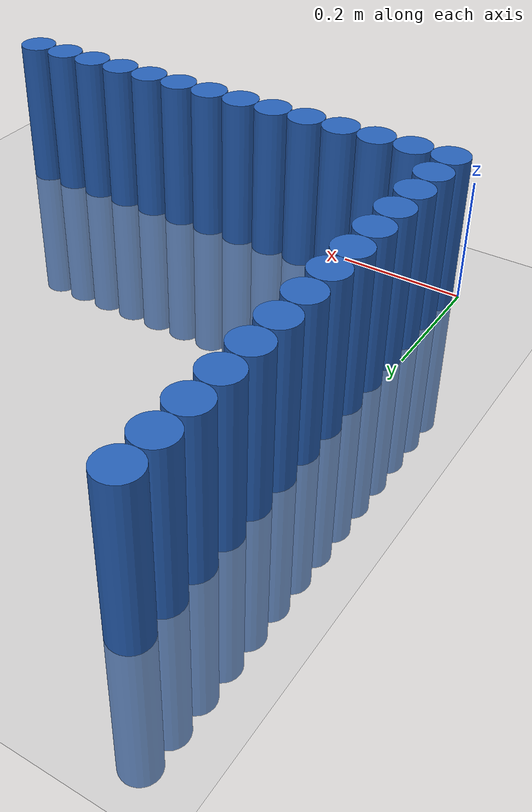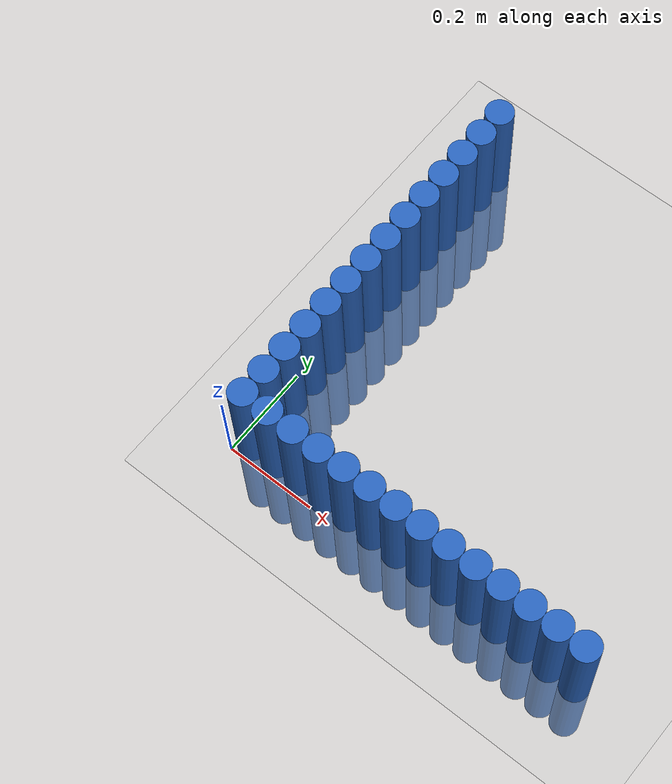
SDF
<sdf version="1.6">
 <world name="default">
  <model name="ground_plane">
   <static>1</static>
   <link name="link">
    <collision name="collision">
     <geometry><plane><normal>0 0 1</normal><size>100 100</size></plane></geometry>
     <surface><friction><ode><mu>100</mu><mu2>50</mu2></ode></friction></surface>
    </collision>
    <visual name="visual">
     <cast_shadows>0</cast_shadows>
     <geometry><plane><normal>0 0 1</normal><size>100 100</size></plane></geometry>
     <material>
      <script><uri>file://media/materials/scripts/gazebo.material</uri><name>Gazebo/Grey</name></script>
     </material>
    </visual>
   </link>
  </model>
  <model name="unit_cylinder_0">
   <static>1</static>
   <pose>0.030000 0.030000 0.000000 0.000000 0.000000 0.000000</pose>
   <link name="link">
    <inertial>
     <mass>1</mass>
     <inertia><ixx>0.145833</ixx><ixy>0</ixy><ixz>0</ixz><iyy>0.145833</iyy><iyz>0</iyz><izz>0.125</izz></inertia>
    </inertial>
    <collision name="collision">
     <geometry><cylinder><radius>0.030000</radius><length>0.5</length></cylinder></geometry>
    </collision>
    <visual name="visual">
     <geometry><cylinder><radius>0.030000</radius><length>0.5</length></cylinder></geometry>
     <material>
      <ambient>0.152000 0.379000 0.720000 1</ambient>
      <diffuse>0.152000 0.379000 0.720000 1</diffuse>
     </material>
     <material>
      <script><name>Gazebo/Grey</name><uri>file://media/materials/scripts/gazebo.material</uri></script>
     </material>
    </visual>
   </link>
  </model>
  <model name="unit_cylinder_1">
   <static>1</static>
   <pose>0.030000 0.090000 0.000000 0.000000 0.000000 0.000000</pose>
   <link name="link">
    <inertial>
     <mass>1</mass>
     <inertia><ixx>0.145833</ixx><ixy>0</ixy><ixz>0</ixz><iyy>0.145833</iyy><iyz>0</iyz><izz>0.125</izz></inertia>
    </inertial>
    <collision name="collision">
     <geometry><cylinder><radius>0.030000</radius><length>0.5</length></cylinder></geometry>
    </collision>
    <visual name="visual">
     <geometry><cylinder><radius>0.030000</radius><length>0.5</length></cylinder></geometry>
     <material>
      <ambient>0.152000 0.379000 0.720000 1</ambient>
      <diffuse>0.152000 0.379000 0.720000 1</diffuse>
     </material>
     <material>
      <script><name>Gazebo/Grey</name><uri>file://media/materials/scripts/gazebo.material</uri></script>
     </material>
    </visual>
   </link>
  </model>
  <model name="unit_cylinder_2">
   <static>1</static>
   <pose>0.030000 0.150000 0.000000 0.000000 0.000000 0.000000</pose>
   <link name="link">
    <inertial>
     <mass>1</mass>
     <inertia><ixx>0.145833</ixx><ixy>0</ixy><ixz>0</ixz><iyy>0.145833</iyy><iyz>0</iyz><izz>0.125</izz></inertia>
    </inertial>
    <collision name="collision">
     <geometry><cylinder><radius>0.030000</radius><length>0.5</length></cylinder></geometry>
    </collision>
    <visual name="visual">
     <geometry><cylinder><radius>0.030000</radius><length>0.5</length></cylinder></geometry>
     <material>
      <ambient>0.152000 0.379000 0.720000 1</ambient>
      <diffuse>0.152000 0.379000 0.720000 1</diffuse>
     </material>
     <material>
      <script><name>Gazebo/Grey</name><uri>file://media/materials/scripts/gazebo.material</uri></script>
     </material>
    </visual>
   </link>
  </model>
  <model name="unit_cylinder_3">
   <static>1</static>
   <pose>0.030000 0.210000 0.000000 0.000000 0.000000 0.000000</pose>
   <link name="link">
    <inertial>
     <mass>1</mass>
     <inertia><ixx>0.145833</ixx><ixy>0</ixy><ixz>0</ixz><iyy>0.145833</iyy><iyz>0</iyz><izz>0.125</izz></inertia>
    </inertial>
    <collision name="collision">
     <geometry><cylinder><radius>0.030000</radius><length>0.5</length></cylinder></geometry>
    </collision>
    <visual name="visual">
     <geometry><cylinder><radius>0.030000</radius><length>0.5</length></cylinder></geometry>
     <material>
      <ambient>0.152000 0.379000 0.720000 1</ambient>
      <diffuse>0.152000 0.379000 0.720000 1</diffuse>
     </material>
     <material>
      <script><name>Gazebo/Grey</name><uri>file://media/materials/scripts/gazebo.material</uri></script>
     </material>
    </visual>
   </link>
  </model>
  <model name="unit_cylinder_4">
   <static>1</static>
   <pose>0.030000 0.270000 0.000000 0.000000 0.000000 0.000000</pose>
   <link name="link">
    <inertial>
     <mass>1</mass>
     <inertia><ixx>0.145833</ixx><ixy>0</ixy><ixz>0</ixz><iyy>0.145833</iyy><iyz>0</iyz><izz>0.125</izz></inertia>
    </inertial>
    <collision name="collision">
     <geometry><cylinder><radius>0.030000</radius><length>0.5</length></cylinder></geometry>
    </collision>
    <visual name="visual">
     <geometry><cylinder><radius>0.030000</radius><length>0.5</length></cylinder></geometry>
     <material>
      <ambient>0.152000 0.379000 0.720000 1</ambient>
      <diffuse>0.152000 0.379000 0.720000 1</diffuse>
     </material>
     <material>
      <script><name>Gazebo/Grey</name><uri>file://media/materials/scripts/gazebo.material</uri></script>
     </material>
    </visual>
   </link>
  </model>
  <model name="unit_cylinder_5">
   <static>1</static>
   <pose>0.030000 0.330000 0.000000 0.000000 0.000000 0.000000</pose>
   <link name="link">
    <inertial>
     <mass>1</mass>
     <inertia><ixx>0.145833</ixx><ixy>0</ixy><ixz>0</ixz><iyy>0.145833</iyy><iyz>0</iyz><izz>0.125</izz></inertia>
    </inertial>
    <collision name="collision">
     <geometry><cylinder><radius>0.030000</radius><length>0.5</length></cylinder></geometry>
    </collision>
    <visual name="visual">
     <geometry><cylinder><radius>0.030000</radius><length>0.5</length></cylinder></geometry>
     <material>
      <ambient>0.152000 0.379000 0.720000 1</ambient>
      <diffuse>0.152000 0.379000 0.720000 1</diffuse>
     </material>
     <material>
      <script><name>Gazebo/Grey</name><uri>file://media/materials/scripts/gazebo.material</uri></script>
     </material>
    </visual>
   </link>
  </model>
  <model name="unit_cylinder_6">
   <static>1</static>
   <pose>0.030000 0.390000 0.000000 0.000000 0.000000 0.000000</pose>
   <link name="link">
    <inertial>
     <mass>1</mass>
     <inertia><ixx>0.145833</ixx><ixy>0</ixy><ixz>0</ixz><iyy>0.145833</iyy><iyz>0</iyz><izz>0.125</izz></inertia>
    </inertial>
    <collision name="collision">
     <geometry><cylinder><radius>0.030000</radius><length>0.5</length></cylinder></geometry>
    </collision>
    <visual name="visual">
     <geometry><cylinder><radius>0.030000</radius><length>0.5</length></cylinder></geometry>
     <material>
      <ambient>0.152000 0.379000 0.720000 1</ambient>
      <diffuse>0.152000 0.379000 0.720000 1</diffuse>
     </material>
     <material>
      <script><name>Gazebo/Grey</name><uri>file://media/materials/scripts/gazebo.material</uri></script>
     </material>
    </visual>
   </link>
  </model>
  <model name="unit_cylinder_7">
   <static>1</static>
   <pose>0.030000 0.450000 0.000000 0.000000 0.000000 0.000000</pose>
   <link name="link">
    <inertial>
     <mass>1</mass>
     <inertia><ixx>0.145833</ixx><ixy>0</ixy><ixz>0</ixz><iyy>0.145833</iyy><iyz>0</iyz><izz>0.125</izz></inertia>
    </inertial>
    <collision name="collision">
     <geometry><cylinder><radius>0.030000</radius><length>0.5</length></cylinder></geometry>
    </collision>
    <visual name="visual">
     <geometry><cylinder><radius>0.030000</radius><length>0.5</length></cylinder></geometry>
     <material>
      <ambient>0.152000 0.379000 0.720000 1</ambient>
      <diffuse>0.152000 0.379000 0.720000 1</diffuse>
     </material>
     <material>
      <script><name>Gazebo/Grey</name><uri>file://media/materials/scripts/gazebo.material</uri></script>
     </material>
    </visual>
   </link>
  </model>
  <model name="unit_cylinder_8">
   <static>1</static>
   <pose>0.030000 0.510000 0.000000 0.000000 0.000000 0.000000</pose>
   <link name="link">
    <inertial>
     <mass>1</mass>
     <inertia><ixx>0.145833</ixx><ixy>0</ixy><ixz>0</ixz><iyy>0.145833</iyy><iyz>0</iyz><izz>0.125</izz></inertia>
    </inertial>
    <collision name="collision">
     <geometry><cylinder><radius>0.030000</radius><length>0.5</length></cylinder></geometry>
    </collision>
    <visual name="visual">
     <geometry><cylinder><radius>0.030000</radius><length>0.5</length></cylinder></geometry>
     <material>
      <ambient>0.152000 0.379000 0.720000 1</ambient>
      <diffuse>0.152000 0.379000 0.720000 1</diffuse>
     </material>
     <material>
      <script><name>Gazebo/Grey</name><uri>file://media/materials/scripts/gazebo.material</uri></script>
     </material>
    </visual>
   </link>
  </model>
  <model name="unit_cylinder_9">
   <static>1</static>
   <pose>0.030000 0.570000 0.000000 0.000000 0.000000 0.000000</pose>
   <link name="link">
    <inertial>
     <mass>1</mass>
     <inertia><ixx>0.145833</ixx><ixy>0</ixy><ixz>0</ixz><iyy>0.145833</iyy><iyz>0</iyz><izz>0.125</izz></inertia>
    </inertial>
    <collision name="collision">
     <geometry><cylinder><radius>0.030000</radius><length>0.5</length></cylinder></geometry>
    </collision>
    <visual name="visual">
     <geometry><cylinder><radius>0.030000</radius><length>0.5</length></cylinder></geometry>
     <material>
      <ambient>0.152000 0.379000 0.720000 1</ambient>
      <diffuse>0.152000 0.379000 0.720000 1</diffuse>
     </material>
     <material>
      <script><name>Gazebo/Grey</name><uri>file://media/materials/scripts/gazebo.material</uri></script>
     </material>
    </visual>
   </link>
  </model>
  <model name="unit_cylinder_10">
   <static>1</static>
   <pose>0.030000 0.630000 0.000000 0.000000 0.000000 0.000000</pose>
   <link name="link">
    <inertial>
     <mass>1</mass>
     <inertia><ixx>0.145833</ixx><ixy>0</ixy><ixz>0</ixz><iyy>0.145833</iyy><iyz>0</iyz><izz>0.125</izz></inertia>
    </inertial>
    <collision name="collision">
     <geometry><cylinder><radius>0.030000</radius><length>0.5</length></cylinder></geometry>
    </collision>
    <visual name="visual">
     <geometry><cylinder><radius>0.030000</radius><length>0.5</length></cylinder></geometry>
     <material>
      <ambient>0.152000 0.379000 0.720000 1</ambient>
      <diffuse>0.152000 0.379000 0.720000 1</diffuse>
     </material>
     <material>
      <script><name>Gazebo/Grey</name><uri>file://media/materials/scripts/gazebo.material</uri></script>
     </material>
    </visual>
   </link>
  </model>
  <model name="unit_cylinder_11">
   <static>1</static>
   <pose>0.030000 0.690000 0.000000 0.000000 0.000000 0.000000</pose>
   <link name="link">
    <inertial>
     <mass>1</mass>
     <inertia><ixx>0.145833</ixx><ixy>0</ixy><ixz>0</ixz><iyy>0.145833</iyy><iyz>0</iyz><izz>0.125</izz></inertia>
    </inertial>
    <collision name="collision">
     <geometry><cylinder><radius>0.030000</radius><length>0.5</length></cylinder></geometry>
    </collision>
    <visual name="visual">
     <geometry><cylinder><radius>0.030000</radius><length>0.5</length></cylinder></geometry>
     <material>
      <ambient>0.152000 0.379000 0.720000 1</ambient>
      <diffuse>0.152000 0.379000 0.720000 1</diffuse>
     </material>
     <material>
      <script><name>Gazebo/Grey</name><uri>file://media/materials/scripts/gazebo.material</uri></script>
     </material>
    </visual>
   </link>
  </model>
  <model name="unit_cylinder_12">
   <static>1</static>
   <pose>0.030000 0.750000 0.000000 0.000000 0.000000 0.000000</pose>
   <link name="link">
    <inertial>
     <mass>1</mass>
     <inertia><ixx>0.145833</ixx><ixy>0</ixy><ixz>0</ixz><iyy>0.145833</iyy><iyz>0</iyz><izz>0.125</izz></inertia>
    </inertial>
    <collision name="collision">
     <geometry><cylinder><radius>0.030000</radius><length>0.5</length></cylinder></geometry>
    </collision>
    <visual name="visual">
     <geometry><cylinder><radius>0.030000</radius><length>0.5</length></cylinder></geometry>
     <material>
      <ambient>0.152000 0.379000 0.720000 1</ambient>
      <diffuse>0.152000 0.379000 0.720000 1</diffuse>
     </material>
     <material>
      <script><name>Gazebo/Grey</name><uri>file://media/materials/scripts/gazebo.material</uri></script>
     </material>
    </visual>
   </link>
  </model>
  <model name="unit_cylinder_13">
   <static>1</static>
   <pose>0.030000 0.810000 0.000000 0.000000 0.000000 0.000000</pose>
   <link name="link">
    <inertial>
     <mass>1</mass>
     <inertia><ixx>0.145833</ixx><ixy>0</ixy><ixz>0</ixz><iyy>0.145833</iyy><iyz>0</iyz><izz>0.125</izz></inertia>
    </inertial>
    <collision name="collision">
     <geometry><cylinder><radius>0.030000</radius><length>0.5</length></cylinder></geometry>
    </collision>
    <visual name="visual">
     <geometry><cylinder><radius>0.030000</radius><length>0.5</length></cylinder></geometry>
     <material>
      <ambient>0.152000 0.379000 0.720000 1</ambient>
      <diffuse>0.152000 0.379000 0.720000 1</diffuse>
     </material>
     <material>
      <script><name>Gazebo/Grey</name><uri>file://media/materials/scripts/gazebo.material</uri></script>
     </material>
    </visual>
   </link>
  </model>
  <model name="unit_cylinder_29">
   <static>1</static>
   <pose>0.090000 0.030000 0.000000 0.000000 0.000000 0.000000</pose>
   <link name="link">
    <inertial>
     <mass>1</mass>
     <inertia><ixx>0.145833</ixx><ixy>0</ixy><ixz>0</ixz><iyy>0.145833</iyy><iyz>0</iyz><izz>0.125</izz></inertia>
    </inertial>
    <collision name="collision">
     <geometry><cylinder><radius>0.030000</radius><length>0.5</length></cylinder></geometry>
    </collision>
    <visual name="visual">
     <geometry><cylinder><radius>0.030000</radius><length>0.5</length></cylinder></geometry>
     <material>
      <ambient>0.152000 0.379000 0.720000 1</ambient>
      <diffuse>0.152000 0.379000 0.720000 1</diffuse>
     </material>
     <material>
      <script><name>Gazebo/Grey</name><uri>file://media/materials/scripts/gazebo.material</uri></script>
     </material>
    </visual>
   </link>
  </model>
  <model name="unit_cylinder_31">
   <static>1</static>
   <pose>0.150000 0.030000 0.000000 0.000000 0.000000 0.000000</pose>
   <link name="link">
    <inertial>
     <mass>1</mass>
     <inertia><ixx>0.145833</ixx><ixy>0</ixy><ixz>0</ixz><iyy>0.145833</iyy><iyz>0</iyz><izz>0.125</izz></inertia>
    </inertial>
    <collision name="collision">
     <geometry><cylinder><radius>0.030000</radius><length>0.5</length></cylinder></geometry>
    </collision>
    <visual name="visual">
     <geometry><cylinder><radius>0.030000</radius><length>0.5</length></cylinder></geometry>
     <material>
      <ambient>0.152000 0.379000 0.720000 1</ambient>
      <diffuse>0.152000 0.379000 0.720000 1</diffuse>
     </material>
     <material>
      <script><name>Gazebo/Grey</name><uri>file://media/materials/scripts/gazebo.material</uri></script>
     </material>
    </visual>
   </link>
  </model>
  <model name="unit_cylinder_33">
   <static>1</static>
   <pose>0.210000 0.030000 0.000000 0.000000 0.000000 0.000000</pose>
   <link name="link">
    <inertial>
     <mass>1</mass>
     <inertia><ixx>0.145833</ixx><ixy>0</ixy><ixz>0</ixz><iyy>0.145833</iyy><iyz>0</iyz><izz>0.125</izz></inertia>
    </inertial>
    <collision name="collision">
     <geometry><cylinder><radius>0.030000</radius><length>0.5</length></cylinder></geometry>
    </collision>
    <visual name="visual">
     <geometry><cylinder><radius>0.030000</radius><length>0.5</length></cylinder></geometry>
     <material>
      <ambient>0.152000 0.379000 0.720000 1</ambient>
      <diffuse>0.152000 0.379000 0.720000 1</diffuse>
     </material>
     <material>
      <script><name>Gazebo/Grey</name><uri>file://media/materials/scripts/gazebo.material</uri></script>
     </material>
    </visual>
   </link>
  </model>
  <model name="unit_cylinder_35">
   <static>1</static>
   <pose>0.270000 0.030000 0.000000 0.000000 0.000000 0.000000</pose>
   <link name="link">
    <inertial>
     <mass>1</mass>
     <inertia><ixx>0.145833</ixx><ixy>0</ixy><ixz>0</ixz><iyy>0.145833</iyy><iyz>0</iyz><izz>0.125</izz></inertia>
    </inertial>
    <collision name="collision">
     <geometry><cylinder><radius>0.030000</radius><length>0.5</length></cylinder></geometry>
    </collision>
    <visual name="visual">
     <geometry><cylinder><radius>0.030000</radius><length>0.5</length></cylinder></geometry>
     <material>
      <ambient>0.152000 0.379000 0.720000 1</ambient>
      <diffuse>0.152000 0.379000 0.720000 1</diffuse>
     </material>
     <material>
      <script><name>Gazebo/Grey</name><uri>file://media/materials/scripts/gazebo.material</uri></script>
     </material>
    </visual>
   </link>
  </model>
  <model name="unit_cylinder_37">
   <static>1</static>
   <pose>0.330000 0.030000 0.000000 0.000000 0.000000 0.000000</pose>
   <link name="link">
    <inertial>
     <mass>1</mass>
     <inertia><ixx>0.145833</ixx><ixy>0</ixy><ixz>0</ixz><iyy>0.145833</iyy><iyz>0</iyz><izz>0.125</izz></inertia>
    </inertial>
    <collision name="collision">
     <geometry><cylinder><radius>0.030000</radius><length>0.5</length></cylinder></geometry>
    </collision>
    <visual name="visual">
     <geometry><cylinder><radius>0.030000</radius><length>0.5</length></cylinder></geometry>
     <material>
      <ambient>0.152000 0.379000 0.720000 1</ambient>
      <diffuse>0.152000 0.379000 0.720000 1</diffuse>
     </material>
     <material>
      <script><name>Gazebo/Grey</name><uri>file://media/materials/scripts/gazebo.material</uri></script>
     </material>
    </visual>
   </link>
  </model>
  <model name="unit_cylinder_39">
   <static>1</static>
   <pose>0.390000 0.030000 0.000000 0.000000 0.000000 0.000000</pose>
   <link name="link">
    <inertial>
     <mass>1</mass>
     <inertia><ixx>0.145833</ixx><ixy>0</ixy><ixz>0</ixz><iyy>0.145833</iyy><iyz>0</iyz><izz>0.125</izz></inertia>
    </inertial>
    <collision name="collision">
     <geometry><cylinder><radius>0.030000</radius><length>0.5</length></cylinder></geometry>
    </collision>
    <visual name="visual">
     <geometry><cylinder><radius>0.030000</radius><length>0.5</length></cylinder></geometry>
     <material>
      <ambient>0.152000 0.379000 0.720000 1</ambient>
      <diffuse>0.152000 0.379000 0.720000 1</diffuse>
     </material>
     <material>
      <script><name>Gazebo/Grey</name><uri>file://media/materials/scripts/gazebo.material</uri></script>
     </material>
    </visual>
   </link>
  </model>
  <model name="unit_cylinder_41">
   <static>1</static>
   <pose>0.450000 0.030000 0.000000 0.000000 0.000000 0.000000</pose>
   <link name="link">
    <inertial>
     <mass>1</mass>
     <inertia><ixx>0.145833</ixx><ixy>0</ixy><ixz>0</ixz><iyy>0.145833</iyy><iyz>0</iyz><izz>0.125</izz></inertia>
    </inertial>
    <collision name="collision">
     <geometry><cylinder><radius>0.030000</radius><length>0.5</length></cylinder></geometry>
    </collision>
    <visual name="visual">
     <geometry><cylinder><radius>0.030000</radius><length>0.5</length></cylinder></geometry>
     <material>
      <ambient>0.152000 0.379000 0.720000 1</ambient>
      <diffuse>0.152000 0.379000 0.720000 1</diffuse>
     </material>
     <material>
      <script><name>Gazebo/Grey</name><uri>file://media/materials/scripts/gazebo.material</uri></script>
     </material>
    </visual>
   </link>
  </model>
  <model name="unit_cylinder_43">
   <static>1</static>
   <pose>0.510000 0.030000 0.000000 0.000000 0.000000 0.000000</pose>
   <link name="link">
    <inertial>
     <mass>1</mass>
     <inertia><ixx>0.145833</ixx><ixy>0</ixy><ixz>0</ixz><iyy>0.145833</iyy><iyz>0</iyz><izz>0.125</izz></inertia>
    </inertial>
    <collision name="collision">
     <geometry><cylinder><radius>0.030000</radius><length>0.5</length></cylinder></geometry>
    </collision>
    <visual name="visual">
     <geometry><cylinder><radius>0.030000</radius><length>0.5</length></cylinder></geometry>
     <material>
      <ambient>0.152000 0.379000 0.720000 1</ambient>
      <diffuse>0.152000 0.379000 0.720000 1</diffuse>
     </material>
     <material>
      <script><name>Gazebo/Grey</name><uri>file://media/materials/scripts/gazebo.material</uri></script>
     </material>
    </visual>
   </link>
  </model>
  <model name="unit_cylinder_45">
   <static>1</static>
   <pose>0.570000 0.030000 0.000000 0.000000 0.000000 0.000000</pose>
   <link name="link">
    <inertial>
     <mass>1</mass>
     <inertia><ixx>0.145833</ixx><ixy>0</ixy><ixz>0</ixz><iyy>0.145833</iyy><iyz>0</iyz><izz>0.125</izz></inertia>
    </inertial>
    <collision name="collision">
     <geometry><cylinder><radius>0.030000</radius><length>0.5</length></cylinder></geometry>
    </collision>
    <visual name="visual">
     <geometry><cylinder><radius>0.030000</radius><length>0.5</length></cylinder></geometry>
     <material>
      <ambient>0.152000 0.379000 0.720000 1</ambient>
      <diffuse>0.152000 0.379000 0.720000 1</diffuse>
     </material>
     <material>
      <script><name>Gazebo/Grey</name><uri>file://media/materials/scripts/gazebo.material</uri></script>
     </material>
    </visual>
   </link>
  </model>
  <model name="unit_cylinder_47">
   <static>1</static>
   <pose>0.630000 0.030000 0.000000 0.000000 0.000000 0.000000</pose>
   <link name="link">
    <inertial>
     <mass>1</mass>
     <inertia><ixx>0.145833</ixx><ixy>0</ixy><ixz>0</ixz><iyy>0.145833</iyy><iyz>0</iyz><izz>0.125</izz></inertia>
    </inertial>
    <collision name="collision">
     <geometry><cylinder><radius>0.030000</radius><length>0.5</length></cylinder></geometry>
    </collision>
    <visual name="visual">
     <geometry><cylinder><radius>0.030000</radius><length>0.5</length></cylinder></geometry>
     <material>
      <ambient>0.152000 0.379000 0.720000 1</ambient>
      <diffuse>0.152000 0.379000 0.720000 1</diffuse>
     </material>
     <material>
      <script><name>Gazebo/Grey</name><uri>file://media/materials/scripts/gazebo.material</uri></script>
     </material>
    </visual>
   </link>
  </model>
  <model name="unit_cylinder_49">
   <static>1</static>
   <pose>0.690000 0.030000 0.000000 0.000000 0.000000 0.000000</pose>
   <link name="link">
    <inertial>
     <mass>1</mass>
     <inertia><ixx>0.145833</ixx><ixy>0</ixy><ixz>0</ixz><iyy>0.145833</iyy><iyz>0</iyz><izz>0.125</izz></inertia>
    </inertial>
    <collision name="collision">
     <geometry><cylinder><radius>0.030000</radius><length>0.5</length></cylinder></geometry>
    </collision>
    <visual name="visual">
     <geometry><cylinder><radius>0.030000</radius><length>0.5</length></cylinder></geometry>
     <material>
      <ambient>0.152000 0.379000 0.720000 1</ambient>
      <diffuse>0.152000 0.379000 0.720000 1</diffuse>
     </material>
     <material>
      <script><name>Gazebo/Grey</name><uri>file://media/materials/scripts/gazebo.material</uri></script>
     </material>
    </visual>
   </link>
  </model>
  <model name="unit_cylinder_51">
   <static>1</static>
   <pose>0.750000 0.030000 0.000000 0.000000 0.000000 0.000000</pose>
   <link name="link">
    <inertial>
     <mass>1</mass>
     <inertia><ixx>0.145833</ixx><ixy>0</ixy><ixz>0</ixz><iyy>0.145833</iyy><iyz>0</iyz><izz>0.125</izz></inertia>
    </inertial>
    <collision name="collision">
     <geometry><cylinder><radius>0.030000</radius><length>0.5</length></cylinder></geometry>
    </collision>
    <visual name="visual">
     <geometry><cylinder><radius>0.030000</radius><length>0.5</length></cylinder></geometry>
     <material>
      <ambient>0.152000 0.379000 0.720000 1</ambient>
      <diffuse>0.152000 0.379000 0.720000 1</diffuse>
     </material>
     <material>
      <script><name>Gazebo/Grey</name><uri>file://media/materials/scripts/gazebo.material</uri></script>
     </material>
    </visual>
   </link>
  </model>
  <model name="unit_cylinder_53">
   <static>1</static>
   <pose>0.810000 0.030000 0.000000 0.000000 0.000000 0.000000</pose>
   <link name="link">
    <inertial>
     <mass>1</mass>
     <inertia><ixx>0.145833</ixx><ixy>0</ixy><ixz>0</ixz><iyy>0.145833</iyy><iyz>0</iyz><izz>0.125</izz></inertia>
    </inertial>
    <collision name="collision">
     <geometry><cylinder><radius>0.030000</radius><length>0.5</length></cylinder></geometry>
    </collision>
    <visual name="visual">
     <geometry><cylinder><radius>0.030000</radius><length>0.5</length></cylinder></geometry>
     <material>
      <ambient>0.152000 0.379000 0.720000 1</ambient>
      <diffuse>0.152000 0.379000 0.720000 1</diffuse>
     </material>
     <material>
      <script><name>Gazebo/Grey</name><uri>file://media/materials/scripts/gazebo.material</uri></script>
     </material>
    </visual>
   </link>
  </model>
 </world>
</sdf>
